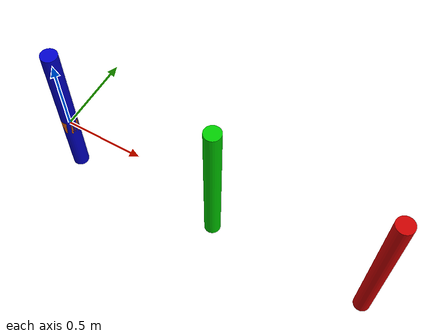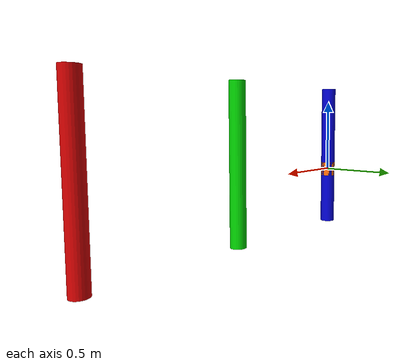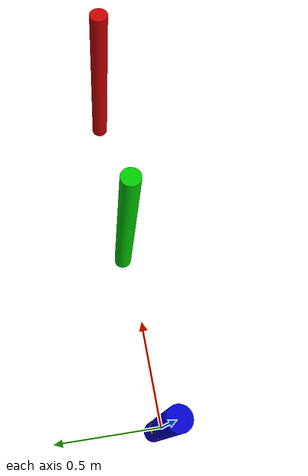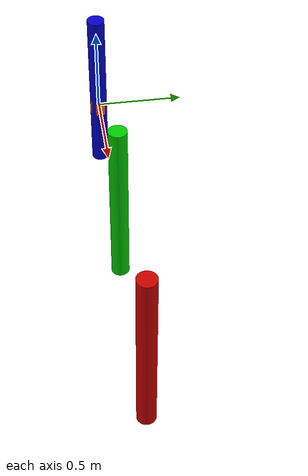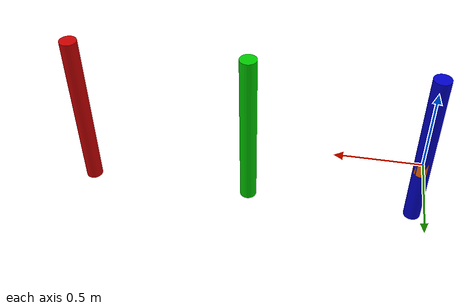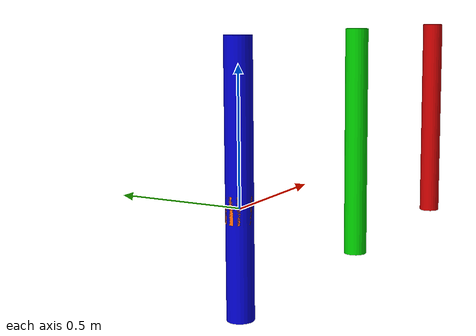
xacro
<?xml version="1.0"?>
<robot xmlns:xacro="http://www.ros.org/wiki/xacro" name="simple_robot_arm">

  <!-- Gazebo -->
  <gazebo>
    <plugin filename="gz_ros2_control-system" name="gz_ros2_control::GazeboSimROS2ControlPlugin">
      <parameters>$(find robot_description)/config/simple_arm_controllers.yaml</parameters>
    </plugin>
  </gazebo>

  <!-- ROS2 controller -->
  <ros2_control name="SimpleArmHardware" type="system">
    <hardware>
      <plugin>hardware_interface/PositionJointInterface</plugin>
    </hardware>
    <joint name="joint1">
      <command_interface name="position"/>
      <state_interface name="position"/>
    </joint>
    <joint name="joint2">
      <command_interface name="position"/>
      <state_interface name="position"/>
    </joint>
    <joint name="joint3">
      <command_interface name="position"/>
      <state_interface name="position"/>
    </joint>
  </ros2_control>

  <!-- Parametri del robot -->
  <xacro:property name="link_length" value="1.0" /> <!-- Lunghezza dei link -->
  <xacro:property name="link_radius" value="0.05" /> <!-- Raggio dei link -->
  <!-- Materials definition -->
  <material name="black">
    <color rgba="0.0 0.0 0.0 1.0"/>
  </material>
  <material name="blue">
    <color rgba="0.0 0.0 0.8 1.0"/>
  </material>
  <material name="green">
    <color rgba="0.0 0.8 0.0 1.0"/>
  </material>
  <material name="grey">
    <color rgba="0.2 0.2 0.2 1.0"/>
  </material>
  <material name="orange">
    <color rgba="1.0 0.4235294117647059 0.0392156862745098 1.0"/>
  </material>
  <material name="brown">
    <color rgba="0.8705882352941177 0.8117647058823529 0.7647058823529411 1.0"/>
  </material>
  <material name="red">
    <color rgba="0.8 0.0 0.0 1.0"/>
  </material>
  <material name="white">
    <color rgba="1.0 1.0 1.0 1.0"/>
  </material>

  <!-- Link 1 - Base -->
  <link name="base_link">
    <visual>
      <geometry>
        <cylinder radius="${link_radius}" length="0.1" />
      </geometry>
      <material name="orange"/>
    </visual>
    <collision>
      <geometry>
        <cylinder radius="${link_radius}" length="0.1" />
      </geometry>
    </collision>
    <inertial>
      <mass value="1.0" />
      <inertia ixx="0.001" ixy="0.0" ixz="0.0" iyy="0.001" iyz="0.0" izz="0.001"/>
    </inertial>
  </link>

  <!-- Link 2 - Primo segmento del braccio -->
  <link name="link1">
    <visual>
      <geometry>
        <cylinder radius="${link_radius}" length="${link_length}" />
      </geometry>
      <material name="blue"/>
    </visual>
    <collision>
      <geometry>
        <cylinder radius="${link_radius}" length="${link_length}" />
      </geometry>
    </collision>
    <inertial>
      <mass value="1.0" />
      <inertia ixx="0.1" ixy="0.0" ixz="0.0" iyy="0.1" iyz="0.0" izz="0.1"/>
    </inertial>
  </link>

  <!-- Link 3 - Secondo segmento del braccio -->
  <link name="link2">
    <visual>
      <geometry>
        <cylinder radius="${link_radius}" length="${link_length}" />
      </geometry>
      <material name="green"/>
    </visual>
    <collision>
      <geometry>
        <cylinder radius="${link_radius}" length="${link_length}" />
      </geometry>
    </collision>
    <inertial>
      <mass value="1.0" />
      <inertia ixx="0.1" ixy="0.0" ixz="0.0" iyy="0.1" iyz="0.0" izz="0.1"/>
    </inertial>
  </link>

  <!-- Link 4 - Ultimo segmento del braccio -->
  <link name="link3">
    <visual>
      <geometry>
        <cylinder radius="${link_radius}" length="${link_length}" />
      </geometry>
      <material name="red"/>
    </visual>
    <collision>
      <geometry>
        <cylinder radius="${link_radius}" length="${link_length}" />
      </geometry>
    </collision>
    <inertial>
      <mass value="1.0" />
      <inertia ixx="0.1" ixy="0.0" ixz="0.0" iyy="0.1" iyz="0.0" izz="0.1"/>
    </inertial>
  </link>

  <!-- Giunto 1 - Giunto rotante alla base -->
  <joint name="joint1" type="revolute">
    <parent link="base_link"/>
    <child link="link1"/>
    <origin xyz="0 0 0.1" rpy="0 0 0" /> <!-- Posizione del giunto -->
    <axis xyz="0 0 1" /> <!-- Rotazione attorno all'asse Z -->
    <limit lower="0" upper="3.14159" effort="100" velocity="1.0"/>
  </joint>

  <!-- Giunto 2 - Giunto che ruota tra link1 e link2 -->
  <joint name="joint2" type="revolute">
    <parent link="link1"/>
    <child link="link2"/>
    <origin xyz="${link_length} 0 0" rpy="0 0 0" /> <!-- Posizione del giunto -->
    <axis xyz="0 1 0" /> <!-- Rotazione attorno all'asse Y -->
    <limit lower="0" upper="3.14159" effort="100" velocity="1.0"/>
  </joint>

  <!-- Giunto 3 - Giunto che ruota tra link2 e link3 -->
  <joint name="joint3" type="revolute">
    <parent link="link2"/>
    <child link="link3"/>
    <origin xyz="${link_length} 0 0" rpy="0 0 0" /> <!-- Posizione del giunto -->
    <axis xyz="0 1 0" /> <!-- Rotazione attorno all'asse Y -->
    <limit lower="0" upper="3.14159" effort="100" velocity="1.0"/>
  </joint>

</robot>
